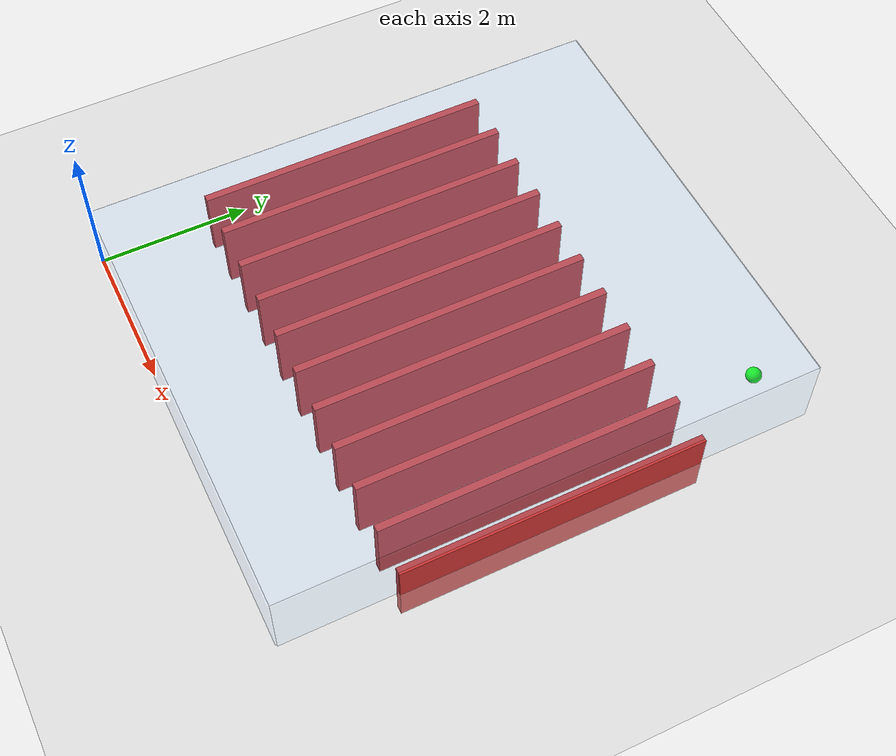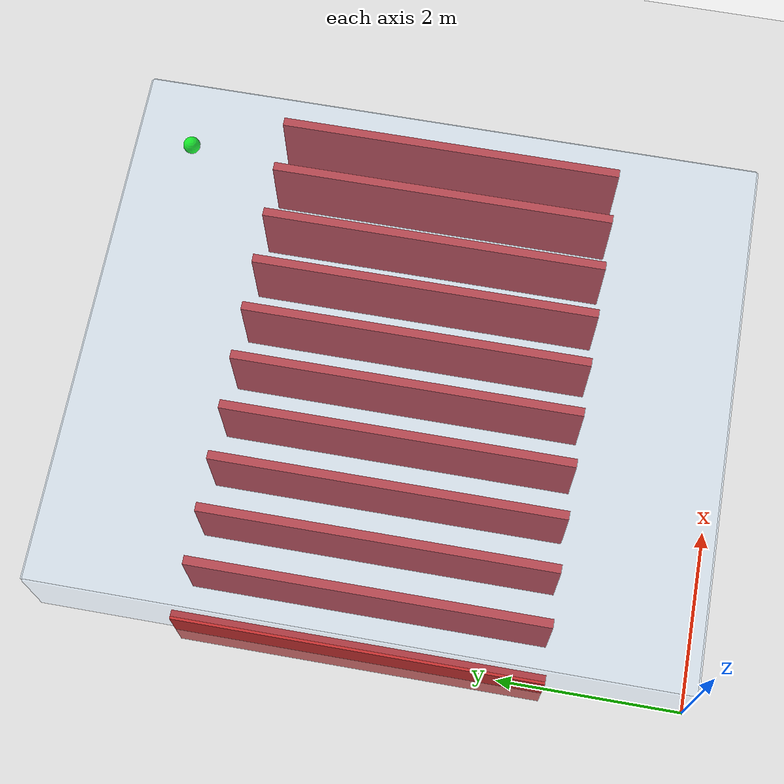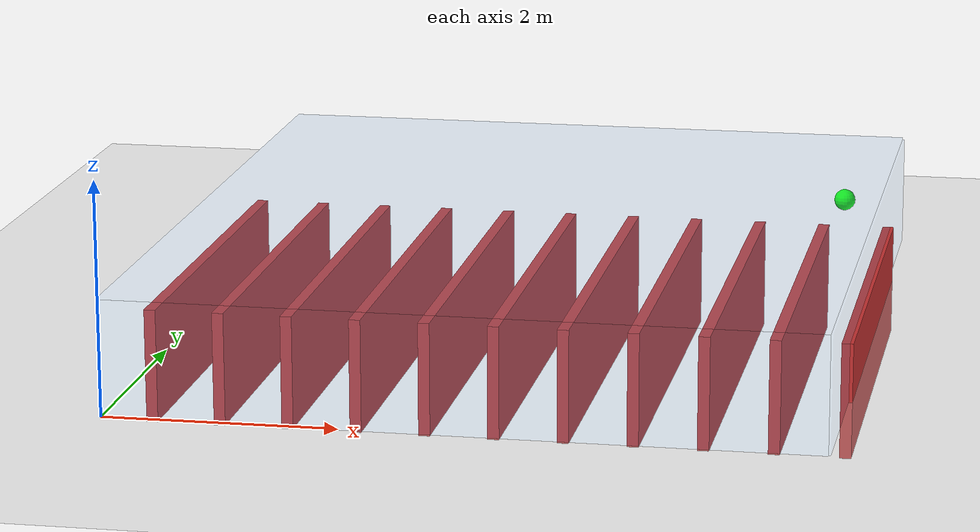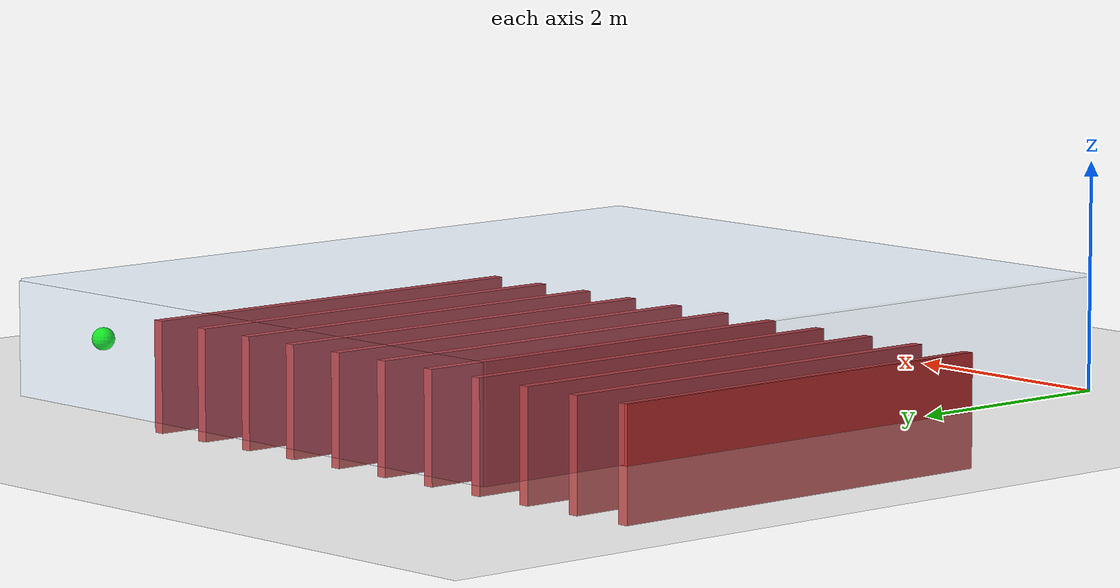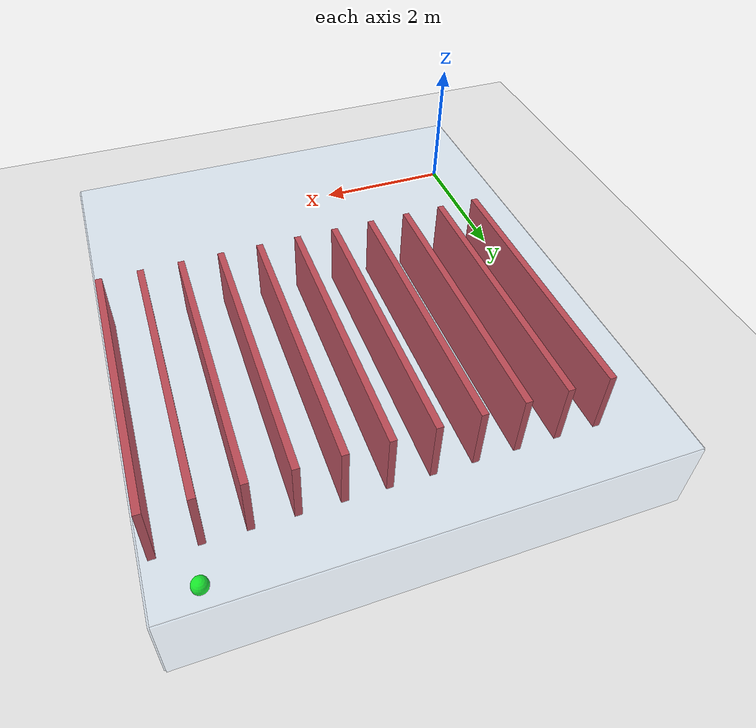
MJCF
<mujoco model="Safe APF Narrow Corridors Map">
    <option timestep="0.001"/>

    <asset>
        <material name="boundary" rgba="0.5 0.7 0.9 0.12"/>
    </asset>

    <worldbody>
        <geom name="floor" type="plane" size="0 0 0.05" rgba="0.8 0.8 0.8 1"/>

        <geom name="ceiling" type="box" pos="3.0 3.5 1.0" size="3.0 3.5 0.02"
              material="boundary" contype="0" conaffinity="0"/>
        <geom name="wall_xn" type="box" pos="0.0 3.5 0.5" size="0.02 3.5 0.5"
              material="boundary" contype="0" conaffinity="0"/>
        <geom name="wall_xp" type="box" pos="6.0 3.5 0.5" size="0.02 3.5 0.5"
              material="boundary" contype="0" conaffinity="0"/>
        <geom name="wall_yn" type="box" pos="3.0 0.0 0.5" size="3.0 0.02 0.5"
              material="boundary" contype="0" conaffinity="0"/>
        <geom name="wall_yp" type="box" pos="3.0 7.0 0.5" size="3.0 0.02 0.5"
              material="boundary" contype="0" conaffinity="0"/>

        <!-- Eight vertical walls with equal x spacing across the middle third: x in [2, 4] -->
        <body name="corridor_wall_0" pos="0.0 3.5 0.0">
            <geom type="box" size="0.05 2.0 0.5"
                  rgba="0.8 0.2 0.2 1"
                  contype="1" conaffinity="1"
                  density="1000"/>
        </body>

        <body name="corridor_wall_1" pos="0.6 3.5 0.0">
            <geom type="box" size="0.05 2.0 0.5"
                  rgba="0.8 0.2 0.2 1"
                  contype="1" conaffinity="1"
                  density="1000"/>
        </body>

        <body name="corridor_wall_2" pos="1.2 3.5 0.0">
            <geom type="box" size="0.05 2.0 0.5"
                  rgba="0.8 0.2 0.2 1"
                  contype="1" conaffinity="1"
                  density="1000"/>
        </body>

        <body name="corridor_wall_3" pos="1.8 3.5 0.0">
            <geom type="box" size="0.05 2.0 0.5"
                  rgba="0.8 0.2 0.2 1"
                  contype="1" conaffinity="1"
                  density="1000"/>
        </body>

        <body name="corridor_wall_4" pos="2.4 3.5 0.0">
            <geom type="box" size="0.05 2.0 0.5"
                  rgba="0.8 0.2 0.2 1"
                  contype="1" conaffinity="1"
                  density="1000"/>
        </body>

        <body name="corridor_wall_5" pos="3.0 3.5 0.0">
            <geom type="box" size="0.05 2.0 0.5"
                  rgba="0.8 0.2 0.2 1"
                  contype="1" conaffinity="1"
                  density="1000"/>
        </body>

        <body name="corridor_wall_6" pos="3.6 3.5 0.0">
            <geom type="box" size="0.05 2.0 0.5"
                  rgba="0.8 0.2 0.2 1"
                  contype="1" conaffinity="1"
                  density="1000"/>
        </body>

        <body name="corridor_wall_7" pos="4.2 3.5 0.0">
            <geom type="box" size="0.05 2.0 0.5"
                  rgba="0.8 0.2 0.2 1"
                  contype="1" conaffinity="1"
                  density="1000"/>
        </body>

        <body name="corridor_wall_8" pos="4.8 3.5 0.0">
            <geom type="box" size="0.05 2.0 0.5"
                  rgba="0.8 0.2 0.2 1"
                  contype="1" conaffinity="1"
                  density="1000"/>
        </body>

        <body name="corridor_wall_9" pos="5.4 3.5 0.0">
            <geom type="box" size="0.05 2.0 0.5"
                  rgba="0.8 0.2 0.2 1"
                  contype="1" conaffinity="1"
                  density="1000"/>
        </body>

        <body name="corridor_wall_10" pos="6.0 3.5 0.0">
            <geom type="box" size="0.05 2.0 0.5"
                  rgba="0.8 0.2 0.2 1"
                  contype="1" conaffinity="1"
                  density="1000"/>
        </body>

        <body name="goal" pos="5.5 6.5 0.5">
            <geom type="sphere" size="0.1"
                  rgba="0 1 0 1"
                  contype="0" conaffinity="0"/>
        </body>
    </worldbody>
</mujoco>
